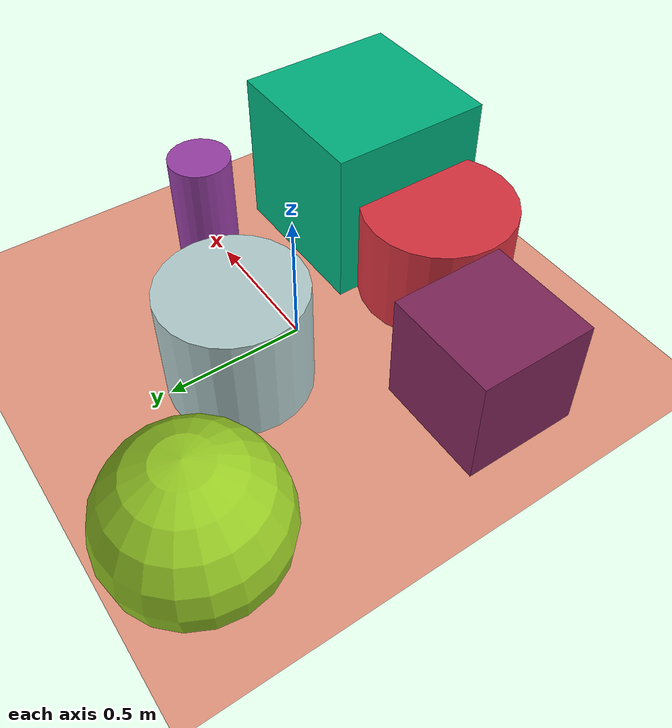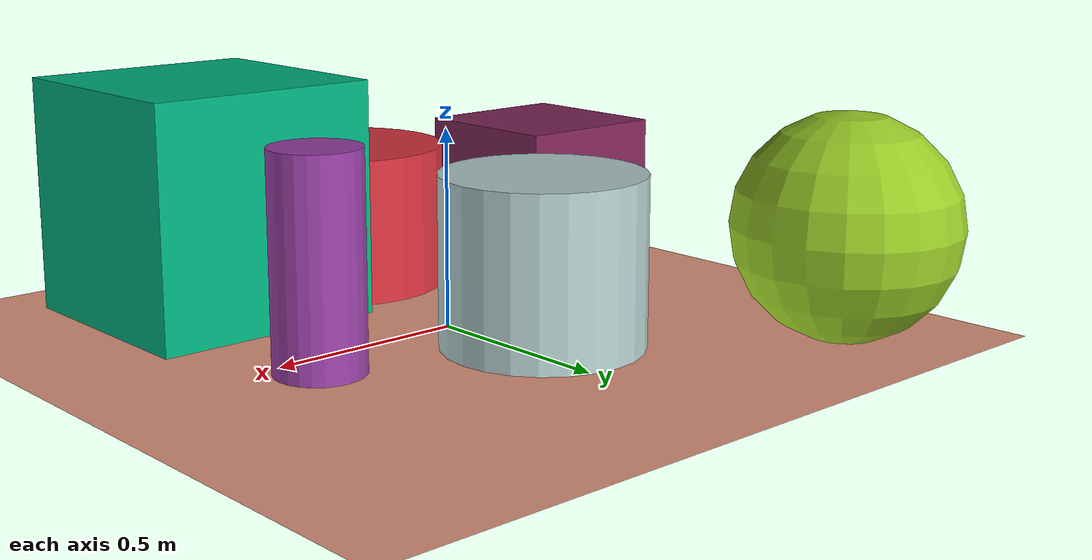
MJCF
<mujoco>
   <asset>
<texture type="skybox" builtin="gradient" rgb1="0.4 0.9 0.5" rgb2="0.2 0.3 0.9" width="256" height="256"/>
<texture name="gradient_0" builtin="gradient" rgb1="0.3 0.8 0.2" rgb2="0.9 0.8 0.1" width="200" height="200"/>
<texture name="flat_1" builtin="flat" rgb1="0.7 0.8 0.8" rgb2="0.7 0.8 0.8"  width="200" height="200"/>
<texture name="gradient_2" builtin="gradient" rgb1="0.7 0.4 0.4" rgb2="0.5 0.1 0.9" width="200" height="200"/>
<texture name="checker_3" builtin="checker" type="2d" rgb1="0.9 0.2 0.5" rgb2="0.1 0.1 0.2" width="200" height="200"/>
<texture name="gradient_4" builtin="gradient" rgb1="0.9 0.3 0.3" rgb2="0.8 0.1 0.2" width="200" height="200"/>
<texture name="flat_5" builtin="flat" rgb1="0.0 0.7 0.5" rgb2="0.0 0.7 0.5"  width="200" height="200"/><material name="gradient_0_mat" reflectance="0" texture="gradient_0" texuniform="true"/>
<material name="flat_1_mat" reflectance="0" texture="flat_1" texuniform="true"/>
<material name="gradient_2_mat" reflectance="0" texture="gradient_2" texuniform="true"/>
<material name="checker_3_mat" reflectance="0" texrepeat="5 5" texture="checker_3" texuniform="false" />
<material name="gradient_4_mat" reflectance="0" texture="gradient_4" texuniform="true"/>
<material name="flat_5_mat" reflectance="0" texture="flat_5" texuniform="true"/>
   </asset>

   <worldbody>
      <light diffuse=".9 .9 .9" pos="0 0 3" dir="0 0 -1"/>
     <geom type="plane" size="1 1 0.1" rgba="0.9 0.6 0.5 1"/>
<geom type="sphere" pos="-0.64 0.72 0.28" size="0.28 0.28 0.28" material="gradient_0_mat" />
<geom type="cylinder" pos="-0.07 0.27 0.21" size="0.25 0.21 0.21" material="flat_1_mat" />
<geom type="cylinder" pos="0.45 0.09 0.26" size="0.11 0.26 0.26" material="gradient_2_mat" />
<geom type="box" pos="-0.61 -0.32 0.21" size="0.21 0.21 0.21" material="checker_3_mat" />
<geom type="cylinder" pos="-0.08 -0.55 0.19" size="0.28 0.19 0.19" material="gradient_4_mat" />
<geom type="box" pos="0.36 -0.53 0.3" size="0.3 0.3 0.3" material="flat_5_mat" /><camera euler="60 0 180" fovy="60" name="camera_a" pos="0 -1.5 1"></camera>   </worldbody>
</mujoco>
